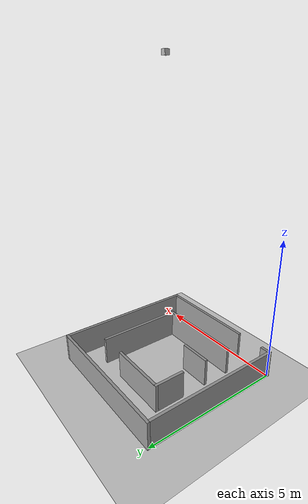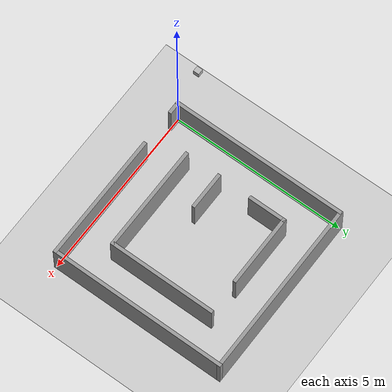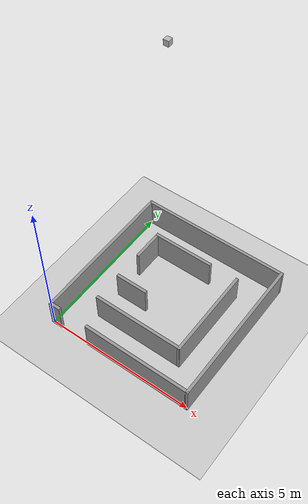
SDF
<sdf version="1.4">
 <world name="default">
  <light name="sun" type="directional">
   <pose>0 0 10 0 -0 0</pose>
   <diffuse>0.8 0.8 0.8 1</diffuse>
   <specular>0.2 0.2 0.2 1</specular>
   <attenuation>
    <range>1000</range>
    <constant>0.9</constant>
    <linear>0.01</linear>
    <quadratic>0.001</quadratic>
   </attenuation>
   <direction>-0.5 0.1 -0.9</direction>
  </light>
  <model name="ground_plane">
   <static>1</static>
   <link name="link">
    <collision name="collision">
     <geometry><plane><normal>0 0 1</normal><size>100 100</size></plane></geometry>
     <surface><friction><ode><mu>100</mu><mu2>50</mu2></ode></friction></surface>
    </collision>
    <visual name="visual">
     <cast_shadows>0</cast_shadows>
     <geometry><plane><normal>0 0 1</normal><size>100 100</size></plane></geometry>
     <material>
      <script><uri>file://media/materials/scripts/gazebo.material</uri><name>Gazebo/Grey</name></script>
     </material>
    </visual>
    <velocity_decay><linear>0</linear><angular>0</angular></velocity_decay>
   </link>
  </model>
  <physics type="ode">
   <max_step_size>0.001</max_step_size>
   <real_time_factor>1</real_time_factor>
   <real_time_update_rate>1000</real_time_update_rate>
   <gravity>0 0 -9.8</gravity>
  </physics>
  <scene><ambient>0.4 0.4 0.4 1</ambient><background>0.7 0.7 0.7 1</background><shadows>1</shadows></scene>
  <spherical_coordinates>
   <surface_model>EARTH_WGS84</surface_model>
   <latitude_deg>0</latitude_deg>
   <longitude_deg>0</longitude_deg>
   <elevation>0</elevation>
   <heading_deg>0</heading_deg>
  </spherical_coordinates>
  <model name="UPlat">
   <link name="Wall_0">
    <pose>2.5 0 0 0 -0 0</pose>
    <visual name="Wall_0_Visual_0">
     <pose>-2.35094 0 0.5 0 -0 0</pose>
     <geometry><box><size>0.398124 0.1 1</size></box></geometry>
     <material>
      <script><uri>file://media/materials/scripts/gazebo.material</uri><name>Gazebo/Grey</name></script>
     </material>
    </visual>
    <collision name="Wall_0_Collision_0">
     <geometry><box><size>0.398124 0.1 1</size></box></geometry>
     <pose>-2.35094 0 0.5 0 -0 0</pose>
    </collision>
    <visual name="Wall_0_Visual_1">
     <pose>0.699062 0 0.5 0 -0 0</pose>
     <geometry><box><size>3.70188 0.1 1</size></box></geometry>
     <material>
      <script><uri>file://media/materials/scripts/gazebo.material</uri><name>Gazebo/Grey</name></script>
     </material>
    </visual>
    <collision name="Wall_0_Collision_1">
     <geometry><box><size>3.70188 0.1 1</size></box></geometry>
     <pose>0.699062 0 0.5 0 -0 0</pose>
    </collision>
    <velocity_decay><linear>0</linear><angular>0</angular></velocity_decay>
   </link>
   <link name="Wall_10">
    <collision name="Wall_10_Collision">
     <geometry><box><size>3.1 0.1 1</size></box></geometry>
     <pose>0 0 0.5 0 -0 0</pose>
    </collision>
    <visual name="Wall_10_Visual">
     <pose>0 0 0.5 0 -0 0</pose>
     <geometry><box><size>3.1 0.1 1</size></box></geometry>
     <material>
      <script><uri>file://media/materials/scripts/gazebo.material</uri><name>Gazebo/Grey</name></script>
     </material>
    </visual>
    <velocity_decay><linear>0</linear><angular>0</angular></velocity_decay>
    <pose>4 2.5 0 0 -0 1.5708</pose>
   </link>
   <link name="Wall_12">
    <collision name="Wall_12_Collision">
     <geometry><box><size>2.1 0.1 1</size></box></geometry>
     <pose>0 0 0.5 0 -0 0</pose>
    </collision>
    <visual name="Wall_12_Visual">
     <pose>0 0 0.5 0 -0 0</pose>
     <geometry><box><size>2.1 0.1 1</size></box></geometry>
     <material>
      <script><uri>file://media/materials/scripts/gazebo.material</uri><name>Gazebo/Grey</name></script>
     </material>
    </visual>
    <velocity_decay><linear>0</linear><angular>0</angular></velocity_decay>
    <pose>2 4 0 0 -0 3.14159</pose>
   </link>
   <link name="Wall_14">
    <collision name="Wall_14_Collision">
     <geometry><box><size>1.1 0.1 1</size></box></geometry>
     <pose>0 0 0.5 0 -0 0</pose>
    </collision>
    <visual name="Wall_14_Visual">
     <pose>0 0 0.5 0 -0 0</pose>
     <geometry><box><size>1.1 0.1 1</size></box></geometry>
     <material>
      <script><uri>file://media/materials/scripts/gazebo.material</uri><name>Gazebo/Grey</name></script>
     </material>
    </visual>
    <velocity_decay><linear>0</linear><angular>0</angular></velocity_decay>
    <pose>1 3.5 0 0 0 -1.5708</pose>
   </link>
   <link name="Wall_16">
    <collision name="Wall_16_Collision">
     <geometry><box><size>1.1 0.1 1</size></box></geometry>
     <pose>0 0 0.5 0 -0 0</pose>
    </collision>
    <visual name="Wall_16_Visual">
     <pose>0 0 0.5 0 -0 0</pose>
     <geometry><box><size>1.1 0.1 1</size></box></geometry>
     <material>
      <script><uri>file://media/materials/scripts/gazebo.material</uri><name>Gazebo/Grey</name></script>
     </material>
    </visual>
    <velocity_decay><linear>0</linear><angular>0</angular></velocity_decay>
    <pose>1.5 2 0 0 -0 0</pose>
   </link>
   <link name="Wall_2">
    <collision name="Wall_2_Collision">
     <geometry><box><size>5.1 0.1 1</size></box></geometry>
     <pose>0 0 0.5 0 -0 0</pose>
    </collision>
    <visual name="Wall_2_Visual">
     <pose>0 0 0.5 0 -0 0</pose>
     <geometry><box><size>5.1 0.1 1</size></box></geometry>
     <material>
      <script><uri>file://media/materials/scripts/gazebo.material</uri><name>Gazebo/Grey</name></script>
     </material>
    </visual>
    <velocity_decay><linear>0</linear><angular>0</angular></velocity_decay>
    <pose>5 2.5 0 0 -0 1.5708</pose>
   </link>
   <link name="Wall_4">
    <collision name="Wall_4_Collision">
     <geometry><box><size>5.1 0.1 1</size></box></geometry>
     <pose>0 0 0.5 0 -0 0</pose>
    </collision>
    <visual name="Wall_4_Visual">
     <pose>0 0 0.5 0 -0 0</pose>
     <geometry><box><size>5.1 0.1 1</size></box></geometry>
     <material>
      <script><uri>file://media/materials/scripts/gazebo.material</uri><name>Gazebo/Grey</name></script>
     </material>
    </visual>
    <velocity_decay><linear>0</linear><angular>0</angular></velocity_decay>
    <pose>2.5 5 0 0 -0 3.14159</pose>
   </link>
   <link name="Wall_6">
    <collision name="Wall_6_Collision">
     <geometry><box><size>5.1 0.1 1</size></box></geometry>
     <pose>0 0 0.5 0 -0 0</pose>
    </collision>
    <visual name="Wall_6_Visual">
     <pose>0 0 0.5 0 -0 0</pose>
     <geometry><box><size>5.1 0.1 1</size></box></geometry>
     <material>
      <script><uri>file://media/materials/scripts/gazebo.material</uri><name>Gazebo/Grey</name></script>
     </material>
    </visual>
    <velocity_decay><linear>0</linear><angular>0</angular></velocity_decay>
    <pose>0 2.5 0 0 0 -1.5708</pose>
   </link>
   <link name="Wall_8">
    <collision name="Wall_8_Collision">
     <geometry><box><size>3.1 0.1 1</size></box></geometry>
     <pose>0 0 0.5 0 -0 0</pose>
    </collision>
    <visual name="Wall_8_Visual">
     <pose>0 0 0.5 0 -0 0</pose>
     <geometry><box><size>3.1 0.1 1</size></box></geometry>
     <material>
      <script><uri>file://media/materials/scripts/gazebo.material</uri><name>Gazebo/Grey</name></script>
     </material>
    </visual>
    <velocity_decay><linear>0</linear><angular>0</angular></velocity_decay>
    <pose>2.5 1 0 0 -0 0</pose>
   </link>
   <static>1</static>
  </model>
  <model name="box">
   <pose>2.5 2.5 10 -3.00003e-06 1.57079 1.57079</pose>
   <link name="cam_link">
    <collision name="cam_collision"><geometry><box><size>0.15 0.15 0.15</size></box></geometry></collision>
    <visual name="cam_visual"><geometry><box><size>0.15 0.15 0.15</size></box></geometry></visual>
    <gravity>0</gravity>
    <sensor name="my_sensor" type="camera">
     <camera name="__default__">
      <horizontal_fov>1.047</horizontal_fov>
      <image><width>1600</width><height>900</height></image>
      <clip><near>0.2</near><far>100</far></clip>
     </camera>
     <plugin name="CameraPublisher" filename="libgazebo_ros_camera.so"/>
     <always_on>1</always_on>
     <update_rate>30</update_rate>
     <visualize>1</visualize>
    </sensor>
    <velocity_decay><linear>0</linear><angular>0</angular></velocity_decay>
    <inertial>
     <inertia><ixx>1</ixx><ixy>0</ixy><ixz>0</ixz><iyy>1</iyy><iyz>0</iyz><izz>1</izz></inertia>
     <mass>1</mass>
    </inertial>
   </link>
   <static>0</static>
  </model>
 </world>
</sdf>
